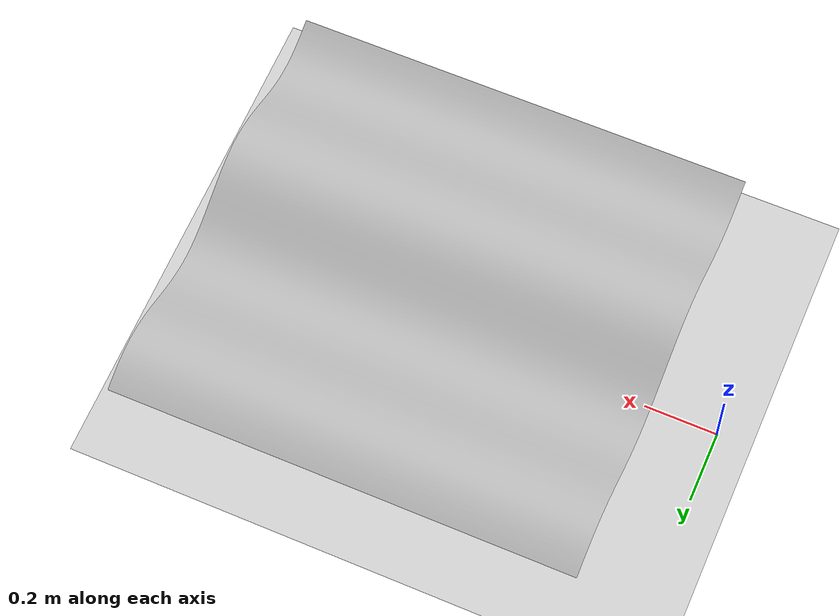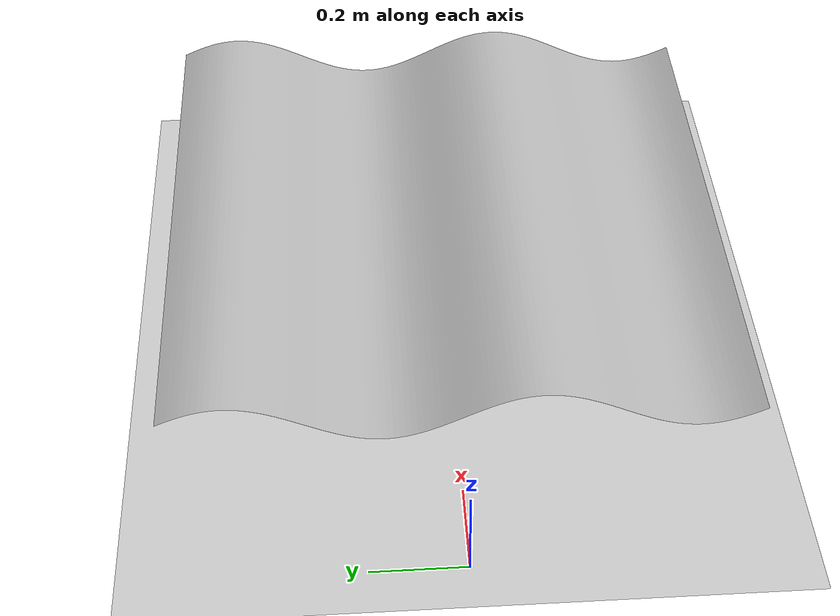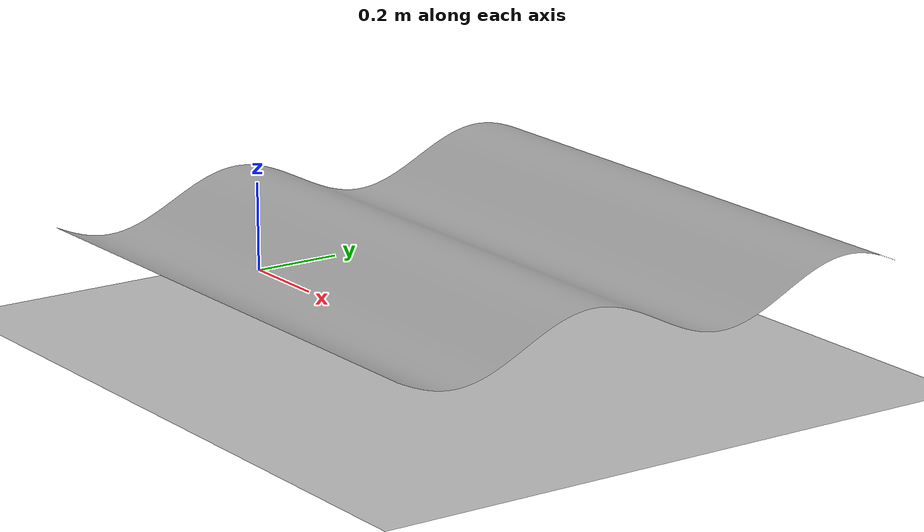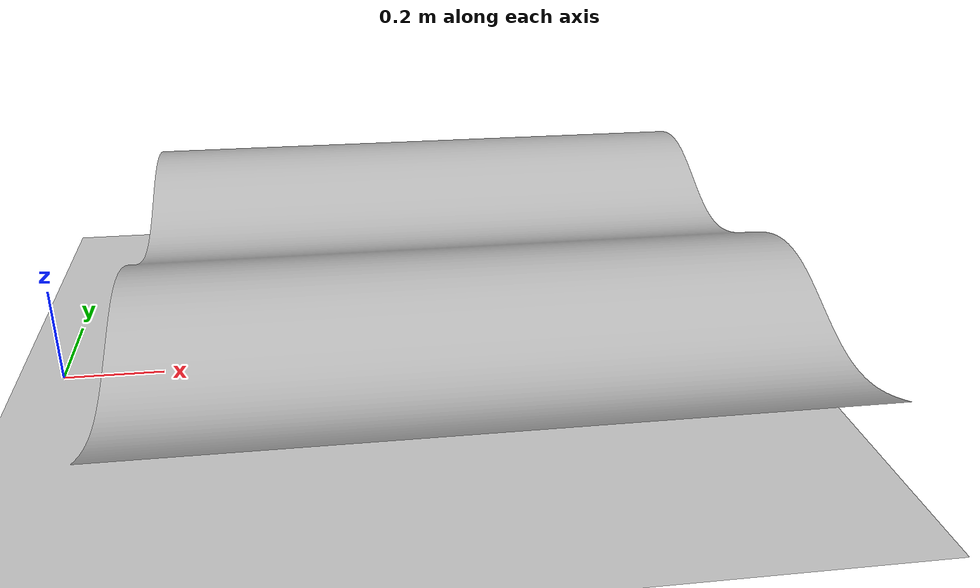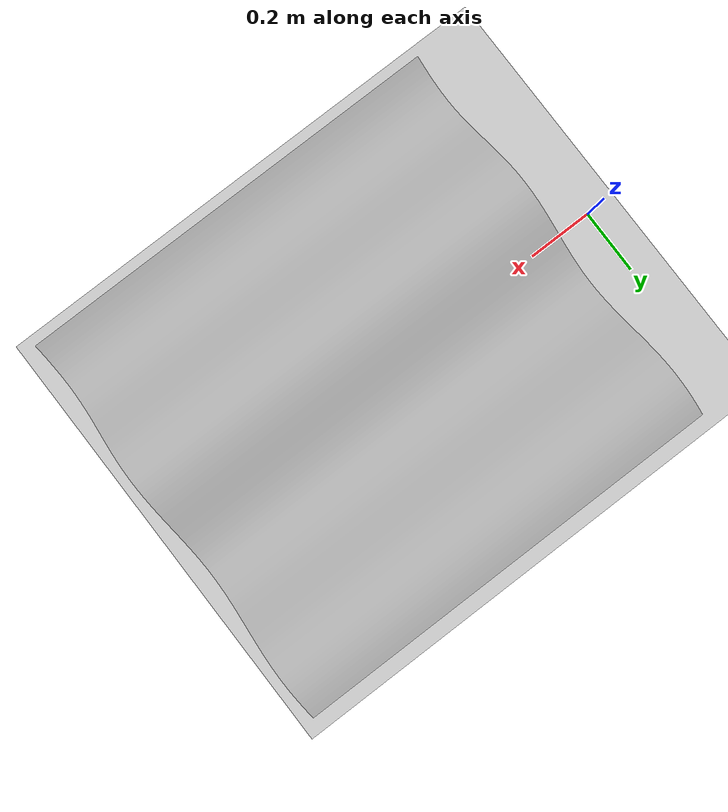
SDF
<?xml version="1.0" ?>
<sdf version="1.4">
  <!-- We use a custom world for the rrbot so that the camera angle is launched correctly -->

  <world name="default">
    <include>
      <uri>model://ground_plane</uri>
    </include>

    <gravity>0 0 -9.8</gravity>

    <!-- Global light source -->
    <include>
      <uri>model://sun</uri>
    </include>

    <!-- Focus camera on tall pendulum -->
    <gui fullscreen='0'>
      <camera name='user_camera'>
        <pose>4.927360 -4.376610 3.740080 0.000000 0.275643 2.356190</pose>
        <view_controller>orbit</view_controller>
      </camera>
    </gui>

    <model name="table">
      <static>true</static>
      <pose>0.8 0 0.25 0 0 0</pose>
      <link name="body">
        <collision name="collision">
          <geometry>
            <mesh>
              <uri>file:///home/maciej/dev/ros2_dev/ros2_github/scara_tutorial_ros2/scara_description/gazebo/worlds/wave.dae</uri>
              <scale>0.5 0.1 0.05</scale>
            </mesh>
          </geometry>
          <surface>
            <contact>
              <poissons_ratio>0.347</poissons_ratio>
              <elastic_modulus>8.8e+09</elastic_modulus>
              <ode>
                <kp>100000</kp>
                <kd>1</kd>
                <max_vel>1.0</max_vel>
                <min_depth>0.001</min_depth>
              </ode>
            </contact>
            <friction>
              <torsional>
                <coefficient>1.0</coefficient>
                <use_patch_radius>0</use_patch_radius>
                <surface_radius>0.05</surface_radius>
              </torsional>
            </friction>
          </surface>
        </collision>
        <visual name="visual">
          <geometry>
            <mesh>
              <uri>file:///home/maciej/dev/ros2_dev/ros2_github/scara_tutorial_ros2/scara_description/gazebo/worlds/wave.dae</uri>
              <scale>0.5 0.1 0.05</scale>
            </mesh>
          </geometry>
        </visual>
      </link>
    </model>

  </world>
</sdf>
Footer
